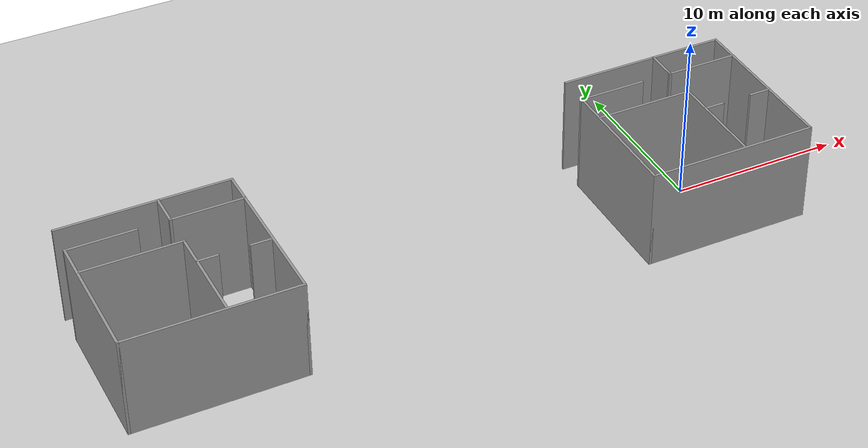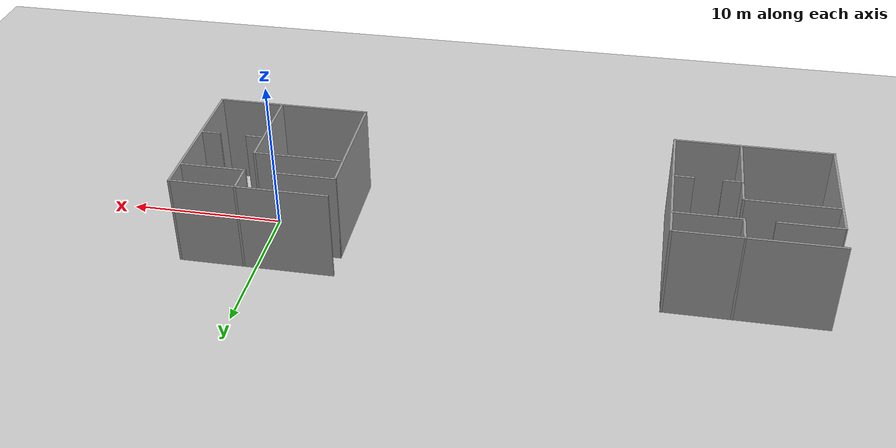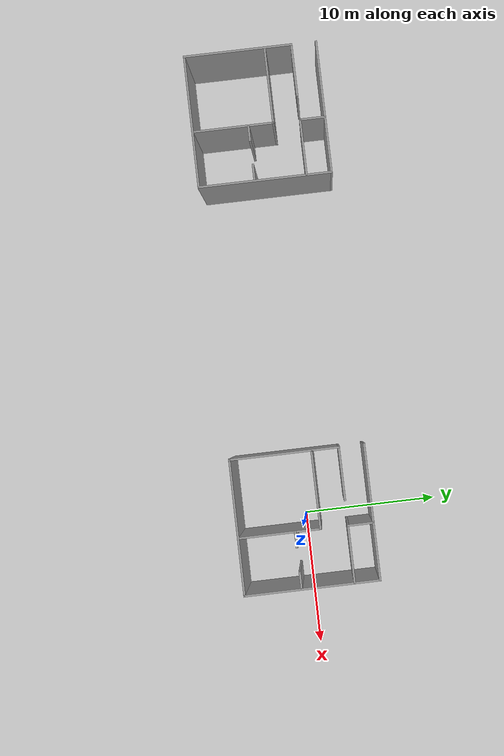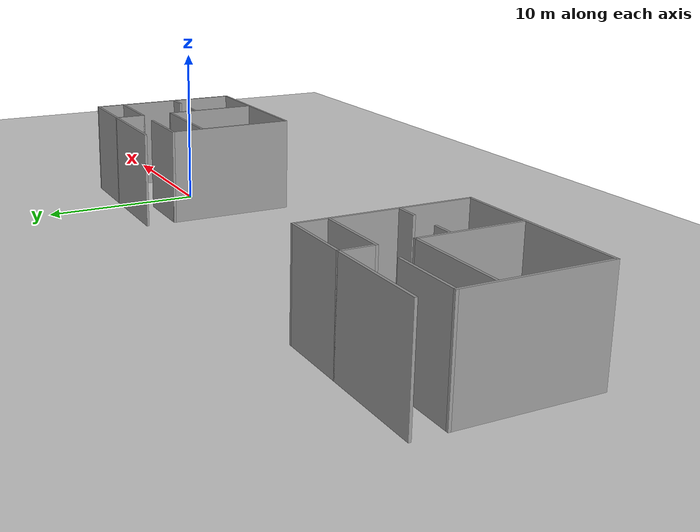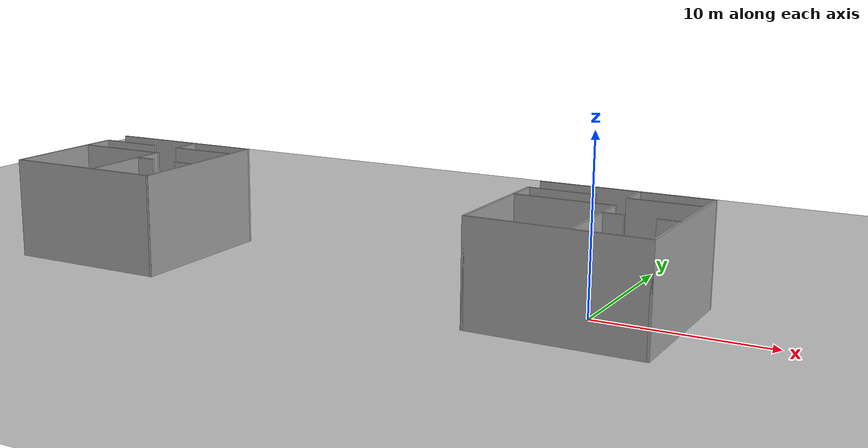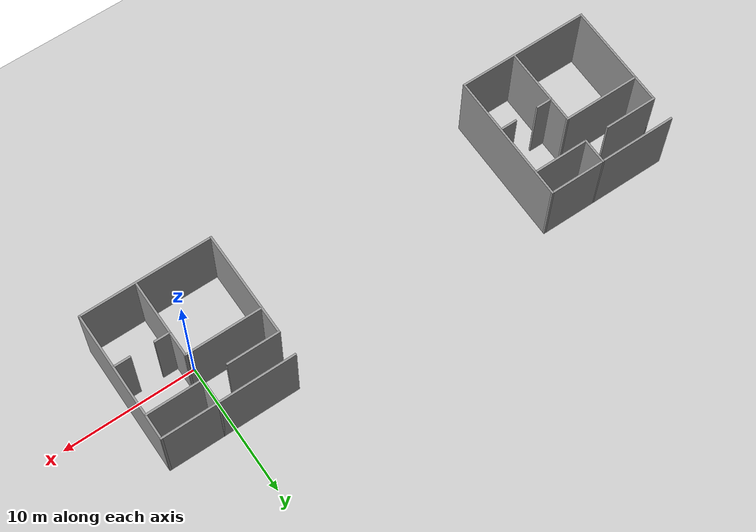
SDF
<sdf version="1.6">
 <world name="default">
  <light name="sun" type="directional">
   <pose>0 0 10 0 -0 0</pose>
   <diffuse>0.8 0.8 0.8 1</diffuse>
   <specular>0.2 0.2 0.2 1</specular>
   <attenuation>
    <range>1000</range>
    <constant>0.9</constant>
    <linear>0.01</linear>
    <quadratic>0.001</quadratic>
   </attenuation>
   <direction>-0.5 0.1 -0.9</direction>
  </light>
  <model name="ground_plane">
   <static>1</static>
   <link name="link">
    <collision name="collision">
     <geometry><plane><normal>0 0 1</normal><size>100 100</size></plane></geometry>
     <surface>
      <contact><collide_bitmask>65535</collide_bitmask></contact>
      <friction><ode><mu>100</mu><mu2>50</mu2></ode></friction>
     </surface>
    </collision>
    <visual name="visual">
     <cast_shadows>0</cast_shadows>
     <geometry><plane><normal>0 0 1</normal><size>100 100</size></plane></geometry>
     <material>
      <script><uri>file://media/materials/scripts/gazebo.material</uri><name>Gazebo/Grey</name></script>
     </material>
    </visual>
   </link>
  </model>
  <gravity>0 0 -9.8</gravity>
  <magnetic_field>6e-06 2.3e-05 -4.2e-05</magnetic_field>
  <atmosphere type="adiabatic"/>
  <physics name="default_physics" default="0" type="ode">
   <max_step_size>0.001</max_step_size>
   <real_time_factor>1</real_time_factor>
   <real_time_update_rate>1000</real_time_update_rate>
  </physics>
  <scene><ambient>0.4 0.4 0.4 1</ambient><background>0.7 0.7 0.7 1</background><shadows>1</shadows></scene>
  <spherical_coordinates>
   <surface_model>EARTH_WGS84</surface_model>
   <latitude_deg>0</latitude_deg>
   <longitude_deg>0</longitude_deg>
   <elevation>0</elevation>
   <heading_deg>0</heading_deg>
  </spherical_coordinates>
  <model name="floor13">
   <link name="Wall_11">
    <collision name="Wall_11_Collision">
     <geometry><box><size>2 0.15 6</size></box></geometry>
     <pose>0 0 3 0 -0 0</pose>
    </collision>
    <visual name="Wall_11_Visual">
     <pose>0 0 3 0 -0 0</pose>
     <geometry><box><size>2 0.15 6</size></box></geometry>
     <material>
      <script><uri>file://media/materials/scripts/gazebo.material</uri><name>Gazebo/Grey</name></script>
      <ambient>1 1 1 1</ambient>
     </material>
     <meta><layer>0</layer></meta>
    </visual>
    <pose>0.775 4 0 0 -0 1.5708</pose>
   </link>
   <link name="Wall_19">
    <collision name="Wall_19_Collision">
     <geometry><box><size>6 0.15 6</size></box></geometry>
     <pose>0 0 3 0 -0 0</pose>
    </collision>
    <visual name="Wall_19_Visual">
     <pose>0 0 3 0 -0 0</pose>
     <geometry><box><size>6 0.15 6</size></box></geometry>
     <material>
      <script><uri>file://media/materials/scripts/gazebo.material</uri><name>Gazebo/Grey</name></script>
      <ambient>1 1 1 1</ambient>
     </material>
     <meta><layer>0</layer></meta>
    </visual>
    <pose>0.775 -1.85 0 0 -0 1.5708</pose>
   </link>
   <link name="Wall_2">
    <collision name="Wall_2_Collision">
     <geometry><box><size>10 0.15 6</size></box></geometry>
     <pose>0 0 3 0 -0 0</pose>
    </collision>
    <visual name="Wall_2_Visual">
     <pose>0 0 3 0 -0 0</pose>
     <geometry><box><size>10 0.15 6</size></box></geometry>
     <material>
      <script><uri>file://media/materials/scripts/gazebo.material</uri><name>Gazebo/Grey</name></script>
      <ambient>1 1 1 1</ambient>
     </material>
     <meta><layer>0</layer></meta>
    </visual>
    <pose>0 -4.925 0 0 -0 0</pose>
   </link>
   <link name="Wall_20">
    <collision name="Wall_20_Collision">
     <geometry><box><size>5.75 0.15 6</size></box></geometry>
     <pose>0 0 3 0 -0 0</pose>
    </collision>
    <visual name="Wall_20_Visual">
     <pose>0 0 3 0 -0 0</pose>
     <geometry><box><size>5.75 0.15 6</size></box></geometry>
     <material>
      <script><uri>file://media/materials/scripts/gazebo.material</uri><name>Gazebo/Grey</name></script>
      <ambient>1 1 1 1</ambient>
     </material>
     <meta><layer>0</layer></meta>
    </visual>
    <pose>-2.025 1.075 0 0 -0 3.14159</pose>
   </link>
   <link name="Wall_25">
    <collision name="Wall_25_Collision">
     <geometry><box><size>1.25 0.15 6</size></box></geometry>
     <pose>0 0 3 0 -0 0</pose>
    </collision>
    <visual name="Wall_25_Visual">
     <pose>0 0 3 0 -0 0</pose>
     <geometry><box><size>1.25 0.15 6</size></box></geometry>
     <material>
      <script><uri>file://media/materials/scripts/gazebo.material</uri><name>Gazebo/Grey</name></script>
      <ambient>1 1 1 1</ambient>
     </material>
     <meta><layer>0</layer></meta>
    </visual>
    <pose>4.275 -0.775 0 0 -0 0</pose>
   </link>
   <link name="Wall_29">
    <collision name="Wall_29_Collision">
     <geometry><box><size>1.25 0.15 6</size></box></geometry>
     <pose>0 0 3 0 -0 0</pose>
    </collision>
    <visual name="Wall_29_Visual">
     <pose>0 0 3 0 -0 0</pose>
     <geometry><box><size>1.25 0.15 6</size></box></geometry>
     <material>
      <script><uri>file://media/materials/scripts/gazebo.material</uri><name>Gazebo/Grey</name></script>
      <ambient>1 1 1 1</ambient>
     </material>
     <meta><layer>0</layer></meta>
    </visual>
    <pose>1.325 -0.775 0 0 -0 3.14159</pose>
   </link>
   <link name="Wall_3">
    <collision name="Wall_3_Collision">
     <geometry><box><size>10 0.15 6</size></box></geometry>
     <pose>0 0 3 0 -0 0</pose>
    </collision>
    <visual name="Wall_3_Visual">
     <pose>0 0 3 0 -0 0</pose>
     <geometry><box><size>10 0.15 6</size></box></geometry>
     <material>
      <script><uri>file://media/materials/scripts/gazebo.material</uri><name>Gazebo/Grey</name></script>
      <ambient>1 1 1 1</ambient>
     </material>
     <meta><layer>0</layer></meta>
    </visual>
    <pose>4.925 0 0 0 -0 1.5708</pose>
   </link>
   <link name="Wall_34">
    <collision name="Wall_34_Collision">
     <geometry><box><size>8.15 0.15 6</size></box></geometry>
     <pose>0 0 3 0 -0 0</pose>
    </collision>
    <visual name="Wall_34_Visual">
     <pose>0 0 3 0 -0 0</pose>
     <geometry><box><size>8.15 0.15 6</size></box></geometry>
     <material>
      <script><uri>file://media/materials/scripts/gazebo.material</uri><name>Gazebo/Grey</name></script>
      <ambient>1 1 1 1</ambient>
     </material>
     <meta><layer>0</layer></meta>
    </visual>
    <pose>-4.925 -0.925 0 0 0 -1.5708</pose>
   </link>
   <link name="Wall_4">
    <collision name="Wall_4_Collision">
     <geometry><box><size>10 0.15 6</size></box></geometry>
     <pose>0 0 3 0 -0 0</pose>
    </collision>
    <visual name="Wall_4_Visual">
     <pose>0 0 3 0 -0 0</pose>
     <geometry><box><size>10 0.15 6</size></box></geometry>
     <material>
      <script><uri>file://media/materials/scripts/gazebo.material</uri><name>Gazebo/Grey</name></script>
      <ambient>1 1 1 1</ambient>
     </material>
     <meta><layer>0</layer></meta>
    </visual>
    <pose>0 4.925 0 0 -0 3.14159</pose>
   </link>
   <link name="Wall_7">
    <collision name="Wall_7_Collision">
     <geometry><box><size>4 0.15 6</size></box></geometry>
     <pose>0 0 3 0 -0 0</pose>
    </collision>
    <visual name="Wall_7_Visual">
     <pose>0 0 3 0 -0 0</pose>
     <geometry><box><size>4 0.15 6</size></box></geometry>
     <material>
      <script><uri>file://media/materials/scripts/gazebo.material</uri><name>Gazebo/Grey</name></script>
      <ambient>1 1 1 1</ambient>
     </material>
     <meta><layer>0</layer></meta>
    </visual>
    <pose>-3 3.075 0 0 -0 0</pose>
   </link>
   <link name="Wall_9">
    <collision name="Wall_9_Collision">
     <geometry><box><size>4.25 0.15 6</size></box></geometry>
     <pose>0 0 3 0 -0 0</pose>
    </collision>
    <visual name="Wall_9_Visual">
     <pose>0 0 3 0 -0 0</pose>
     <geometry><box><size>4.25 0.15 6</size></box></geometry>
     <material>
      <script><uri>file://media/materials/scripts/gazebo.material</uri><name>Gazebo/Grey</name></script>
      <ambient>1 1 1 1</ambient>
     </material>
     <meta><layer>0</layer></meta>
    </visual>
    <pose>2.825 3.075 0 0 -0 0</pose>
   </link>
   <static>1</static>
  </model>
  <model name="floor13_clone">
   <pose>-30 0 0 0 -0 0</pose>
   <link name="Wall_11">
    <collision name="Wall_11_Collision">
     <geometry><box><size>2 0.15 6</size></box></geometry>
     <pose>0 0 3 0 -0 0</pose>
    </collision>
    <visual name="Wall_11_Visual">
     <pose>0 0 3 0 -0 0</pose>
     <geometry><box><size>2 0.15 6</size></box></geometry>
     <material>
      <script><uri>file://media/materials/scripts/gazebo.material</uri><name>Gazebo/Grey</name></script>
      <ambient>1 1 1 1</ambient>
     </material>
     <meta><layer>0</layer></meta>
    </visual>
    <pose>0.775 4 0 0 -0 1.5708</pose>
   </link>
   <link name="Wall_19">
    <collision name="Wall_19_Collision">
     <geometry><box><size>6 0.15 6</size></box></geometry>
     <pose>0 0 3 0 -0 0</pose>
    </collision>
    <visual name="Wall_19_Visual">
     <pose>0 0 3 0 -0 0</pose>
     <geometry><box><size>6 0.15 6</size></box></geometry>
     <material>
      <script><uri>file://media/materials/scripts/gazebo.material</uri><name>Gazebo/Grey</name></script>
      <ambient>1 1 1 1</ambient>
     </material>
     <meta><layer>0</layer></meta>
    </visual>
    <pose>0.775 -1.85 0 0 -0 1.5708</pose>
   </link>
   <link name="Wall_2">
    <collision name="Wall_2_Collision">
     <geometry><box><size>10 0.15 6</size></box></geometry>
     <pose>0 0 3 0 -0 0</pose>
    </collision>
    <visual name="Wall_2_Visual">
     <pose>0 0 3 0 -0 0</pose>
     <geometry><box><size>10 0.15 6</size></box></geometry>
     <material>
      <script><uri>file://media/materials/scripts/gazebo.material</uri><name>Gazebo/Grey</name></script>
      <ambient>1 1 1 1</ambient>
     </material>
     <meta><layer>0</layer></meta>
    </visual>
    <pose>0 -4.925 0 0 -0 0</pose>
   </link>
   <link name="Wall_20">
    <collision name="Wall_20_Collision">
     <geometry><box><size>5.75 0.15 6</size></box></geometry>
     <pose>0 0 3 0 -0 0</pose>
    </collision>
    <visual name="Wall_20_Visual">
     <pose>0 0 3 0 -0 0</pose>
     <geometry><box><size>5.75 0.15 6</size></box></geometry>
     <material>
      <script><uri>file://media/materials/scripts/gazebo.material</uri><name>Gazebo/Grey</name></script>
      <ambient>1 1 1 1</ambient>
     </material>
     <meta><layer>0</layer></meta>
    </visual>
    <pose>-2.025 1.075 0 0 -0 3.14159</pose>
   </link>
   <link name="Wall_25">
    <collision name="Wall_25_Collision">
     <geometry><box><size>1.25 0.15 6</size></box></geometry>
     <pose>0 0 3 0 -0 0</pose>
    </collision>
    <visual name="Wall_25_Visual">
     <pose>0 0 3 0 -0 0</pose>
     <geometry><box><size>1.25 0.15 6</size></box></geometry>
     <material>
      <script><uri>file://media/materials/scripts/gazebo.material</uri><name>Gazebo/Grey</name></script>
      <ambient>1 1 1 1</ambient>
     </material>
     <meta><layer>0</layer></meta>
    </visual>
    <pose>4.275 -0.775 0 0 -0 0</pose>
   </link>
   <link name="Wall_29">
    <collision name="Wall_29_Collision">
     <geometry><box><size>1.25 0.15 6</size></box></geometry>
     <pose>0 0 3 0 -0 0</pose>
    </collision>
    <visual name="Wall_29_Visual">
     <pose>0 0 3 0 -0 0</pose>
     <geometry><box><size>1.25 0.15 6</size></box></geometry>
     <material>
      <script><uri>file://media/materials/scripts/gazebo.material</uri><name>Gazebo/Grey</name></script>
      <ambient>1 1 1 1</ambient>
     </material>
     <meta><layer>0</layer></meta>
    </visual>
    <pose>1.325 -0.775 0 0 -0 3.14159</pose>
   </link>
   <link name="Wall_3">
    <collision name="Wall_3_Collision">
     <geometry><box><size>10 0.15 6</size></box></geometry>
     <pose>0 0 3 0 -0 0</pose>
    </collision>
    <visual name="Wall_3_Visual">
     <pose>0 0 3 0 -0 0</pose>
     <geometry><box><size>10 0.15 6</size></box></geometry>
     <material>
      <script><uri>file://media/materials/scripts/gazebo.material</uri><name>Gazebo/Grey</name></script>
      <ambient>1 1 1 1</ambient>
     </material>
     <meta><layer>0</layer></meta>
    </visual>
    <pose>4.925 0 0 0 -0 1.5708</pose>
   </link>
   <link name="Wall_34">
    <collision name="Wall_34_Collision">
     <geometry><box><size>8.15 0.15 6</size></box></geometry>
     <pose>0 0 3 0 -0 0</pose>
    </collision>
    <visual name="Wall_34_Visual">
     <pose>0 0 3 0 -0 0</pose>
     <geometry><box><size>8.15 0.15 6</size></box></geometry>
     <material>
      <script><uri>file://media/materials/scripts/gazebo.material</uri><name>Gazebo/Grey</name></script>
      <ambient>1 1 1 1</ambient>
     </material>
     <meta><layer>0</layer></meta>
    </visual>
    <pose>-4.925 -0.925 0 0 0 -1.5708</pose>
   </link>
   <link name="Wall_4">
    <collision name="Wall_4_Collision">
     <geometry><box><size>10 0.15 6</size></box></geometry>
     <pose>0 0 3 0 -0 0</pose>
    </collision>
    <visual name="Wall_4_Visual">
     <pose>0 0 3 0 -0 0</pose>
     <geometry><box><size>10 0.15 6</size></box></geometry>
     <material>
      <script><uri>file://media/materials/scripts/gazebo.material</uri><name>Gazebo/Grey</name></script>
      <ambient>1 1 1 1</ambient>
     </material>
     <meta><layer>0</layer></meta>
    </visual>
    <pose>0 4.925 0 0 -0 3.14159</pose>
   </link>
   <link name="Wall_7">
    <collision name="Wall_7_Collision">
     <geometry><box><size>4 0.15 6</size></box></geometry>
     <pose>0 0 3 0 -0 0</pose>
    </collision>
    <visual name="Wall_7_Visual">
     <pose>0 0 3 0 -0 0</pose>
     <geometry><box><size>4 0.15 6</size></box></geometry>
     <material>
      <script><uri>file://media/materials/scripts/gazebo.material</uri><name>Gazebo/Grey</name></script>
      <ambient>1 1 1 1</ambient>
     </material>
     <meta><layer>0</layer></meta>
    </visual>
    <pose>-3 3.075 0 0 -0 0</pose>
   </link>
   <link name="Wall_9">
    <collision name="Wall_9_Collision">
     <geometry><box><size>4.25 0.15 6</size></box></geometry>
     <pose>0 0 3 0 -0 0</pose>
    </collision>
    <visual name="Wall_9_Visual">
     <pose>0 0 3 0 -0 0</pose>
     <geometry><box><size>4.25 0.15 6</size></box></geometry>
     <material>
      <script><uri>file://media/materials/scripts/gazebo.material</uri><name>Gazebo/Grey</name></script>
      <ambient>1 1 1 1</ambient>
     </material>
     <meta><layer>0</layer></meta>
    </visual>
    <pose>2.825 3.075 0 0 -0 0</pose>
   </link>
   <static>1</static>
  </model>
 </world>
</sdf>
